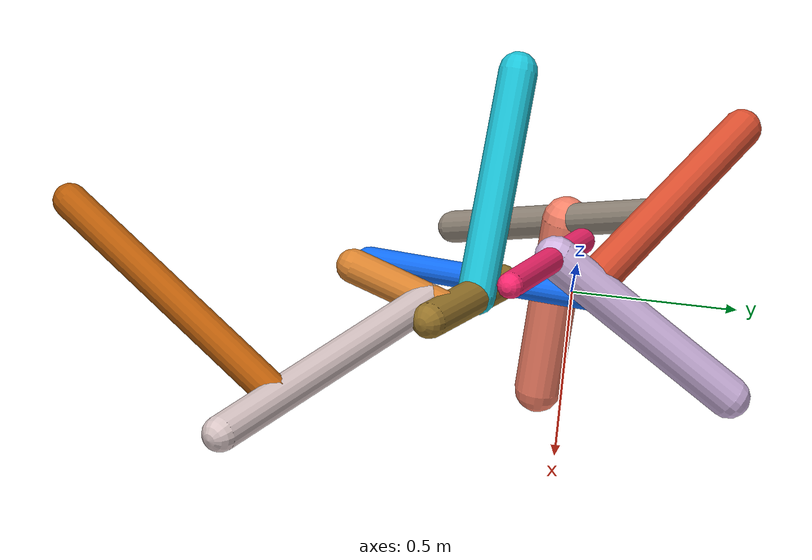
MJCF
<mujoco model="morphology">
  <option timestep="0.01"/>
  <default>
    <default class="/"/>
    <default class="0/"/>
    <default class="0/1/"/>
    <default class="0/1/2/"/>
    <default class="0/1/2/3/"/>
    <default class="0/1/2/3/4/"/>
    <default class="0/1/2/3/4/5/"/>
    <default class="0/1/2/3/4/5/6/"/>
    <default class="0/1/2/3/7/"/>
    <default class="0/1/8/"/>
    <default class="0/1/8/9/"/>
    <default class="0/1/8/9/10/"/>
  </default>
  <asset>
    <texture name="texplane" type="2d" builtin="checker" rgb1="0.10000000000000001 0.20000000000000001 0.29999999999999999" rgb2="0.20000000000000001 0.29999999999999999 0.40000000000000002" width="300" height="300"/>
    <material name="MatPlane" class="/" texture="texplane" texrepeat="20 20" specular="1" shininess="1" reflectance="0.5"/>
  </asset>
  <worldbody>
    <light name="//unnamed_light_0" class="/" directional="true" pos="0 0 1.5" dir="0 0 -1.3" cutoff="100" exponent="1" diffuse="1 1 1" specular="0.10000000000000001 0.10000000000000001 0.10000000000000001"/>
    <geom name="ground" class="/" type="plane" size="15 15 0.5" material="MatPlane" rgba="1 1 1 1"/>
    <site name="body" class="/" size="9.9999999999999995e-07 9.9999999999999995e-07 9.9999999999999995e-07" pos="0 0 0.89413598775863645"/>
    <body pos="0 0 0.89413598775863645" name="0/">
      <freejoint name="0/"/>
      <geom name="0/geom" class="0/" type="capsule" contype="1" conaffinity="1" condim="3" size="0.037298405831828474" rgba="0.99846503491456495 0.1527190962236683 0.43986388479373673 1" friction="0.59999999999999998 0.10000000000000001 0.10000000000000001" fromto="0 0 0 0.24437146826491152 -0.18853383184953709 0.57566236873524601"/>
      <site name="0/end0" class="0/" size="0.0050000000000000001" pos="0.24437146826491152 -0.18853383184953709 0.57566236873524601"/>
      <site name="0/attach1" class="0/" size="9.9999999999999995e-07 9.9999999999999995e-07 9.9999999999999995e-07" pos="0.091434960266010792 -0.070542537336124908 0.21539202667835608"/>
      <body pos="0.091434960266010792 -0.070542537336124908 0.21539202667835608" name="0/1/">
        <joint name="0/1/joint/" class="0/" type="hinge" axis="0 0 1" limited="true" range="-34.826280160724536 34.826280160724536"/>
        <geom name="0/1/geom" class="0/1/" type="capsule" contype="1" conaffinity="1" condim="3" size="0.061235313085392193" rgba="0.81612383256531562 0.70982854760424252 0.88377830186093076 1" friction="0.59999999999999998 0.10000000000000001 0.10000000000000001" fromto="0 0 0 0.30022434626485039 0.53289962308044569 -0.25982365886033471"/>
        <site name="0/1/end1" class="0/1/" size="0.0050000000000000001" pos="0.30022434626485039 0.53289962308044569 -0.25982365886033471"/>
        <site name="0/1/attach2" class="0/1/" size="9.9999999999999995e-07 9.9999999999999995e-07 9.9999999999999995e-07" pos="0.09229781425921578 0.16382905331233491 -0.079877451992136042"/>
        <body pos="0.09229781425921578 0.16382905331233491 -0.079877451992136042" name="0/1/2/">
          <joint name="0/1/2/joint/" class="0/1/" type="hinge" axis="5.5511151231257827e-17 0.4382500720042789 0.89885308832325017" limited="true" range="-42.157900343513276 42.157900343513276"/>
          <geom name="0/1/2/geom" class="0/1/2/" type="capsule" contype="1" conaffinity="1" condim="3" size="0.037390917721228496" rgba="0.070642210479517575 0.43889722840943013 0.98090982872539734 1" friction="0.59999999999999998 0.10000000000000001 0.10000000000000001" fromto="0 0 0 -0.11229370248529924 -0.69473430818454374 -0.41955538054209329"/>
          <site name="0/1/2/end2" class="0/1/2/" size="0.0050000000000000001" pos="-0.11229370248529924 -0.69473430818454374 -0.41955538054209329"/>
          <site name="0/1/2/attach3" class="0/1/2/" size="9.9999999999999995e-07 9.9999999999999995e-07 9.9999999999999995e-07" pos="-0.049776023487617782 -0.30795236488328342 -0.18597479657377602"/>
          <body pos="-0.049776023487617782 -0.30795236488328342 -0.18597479657377602" name="0/1/2/3/">
            <joint name="0/1/2/3/joint/" class="0/1/2/" type="hinge" axis="0.99056323533104651 -0.11732221216592331 -0.070851784331685791" limited="true" range="-45.894612034747837 45.894612034747837"/>
            <geom name="0/1/2/3/geom" class="0/1/2/3/" type="capsule" contype="1" conaffinity="1" condim="3" size="0.051503652304916665" rgba="0.58967547949008792 0.45398544588784351 0.1638482931151729 1" friction="0.59999999999999998 0.10000000000000001 0.10000000000000001" fromto="0 0 0 0.18009315639625489 -0.18636818264998656 0.30278706251527021"/>
            <site name="0/1/2/3/end3" class="0/1/2/3/" size="0.0050000000000000001" pos="0.18009315639625489 -0.18636818264998656 0.30278706251527021"/>
            <site name="0/1/2/3/attach4" class="0/1/2/3/" size="9.9999999999999995e-07 9.9999999999999995e-07 9.9999999999999995e-07" pos="0.13217194081919015 -0.13677723740704167 0.22221807040535024"/>
            <body pos="0.13217194081919015 -0.13677723740704167 0.22221807040535024" name="0/1/2/3/4/">
              <joint name="0/1/2/3/4/joint/" class="0/1/2/3/" type="hinge" axis="5.5511151231257827e-17 0.85161100653036392 0.5241742969245442" limited="true" range="-38.321078203624396 38.321078203624396"/>
              <geom name="0/1/2/3/4/geom" class="0/1/2/3/4/" type="capsule" contype="1" conaffinity="1" condim="3" size="0.049342204254496064" rgba="0.85799986989574484 0.51728218255363789 0.18602038559001721 1" friction="0.59999999999999998 0.10000000000000001 0.10000000000000001" fromto="0 0 0 -0.099282468398348867 -0.27958000025874358 -0.026838947698534343"/>
              <site name="0/1/2/3/4/end4" class="0/1/2/3/4/" size="0.0050000000000000001" pos="-0.099282468398348867 -0.27958000025874358 -0.026838947698534343"/>
              <site name="0/1/2/3/4/attach5" class="0/1/2/3/4/" size="9.9999999999999995e-07 9.9999999999999995e-07 9.9999999999999995e-07" pos="-0.022591626101384828 -0.063618148633537097 -0.00610717562870339"/>
              <body pos="-0.022591626101384828 -0.063618148633537097 -0.00610717562870339" name="0/1/2/3/4/5/">
                <joint name="0/1/2/3/4/5/joint/" class="0/1/2/3/4/" type="hinge" axis="-6.9388939039072284e-18 -0.09555808276917431 0.99542385586115012" limited="true" range="-40.282945842175629 40.282945842175629"/>
                <geom name="0/1/2/3/4/5/geom" class="0/1/2/3/4/5/" type="capsule" contype="1" conaffinity="1" condim="3" size="0.050083819922118675" rgba="0.84762992058907372 0.77281355427281129 0.77209723980684641 1" friction="0.59999999999999998 0.10000000000000001 0.10000000000000001" fromto="0 0 0 0.51449465099980096 -0.49893043884941435 0.5882457931412044"/>
                <site name="0/1/2/3/4/5/end5" class="0/1/2/3/4/5/" size="0.0050000000000000001" pos="0.51449465099980096 -0.49893043884941435 0.5882457931412044"/>
                <site name="0/1/2/3/4/5/attach6" class="0/1/2/3/4/5/" size="9.9999999999999995e-07 9.9999999999999995e-07 9.9999999999999995e-07" pos="0.37646940782850352 -0.3650806602094821 0.43043507832613653"/>
                <body pos="0.37646940782850352 -0.3650806602094821 0.43043507832613653" name="0/1/2/3/4/5/6/">
                  <joint name="0/1/2/3/4/5/6/joint/" class="0/1/2/3/4/5/" type="hinge" axis="0.83191672103000081 0.35892980362825372 -0.42318313451515877" limited="true" range="-68.963628249710879 68.963628249710879"/>
                  <geom name="0/1/2/3/4/5/6/geom" class="0/1/2/3/4/5/6/" type="capsule" contype="1" conaffinity="1" condim="3" size="0.049656722330943155" rgba="0.72662913730128353 0.36427987639406234 0.035200824892154259 1" friction="0.59999999999999998 0.10000000000000001 0.10000000000000001" fromto="0 0 0 -0.50965897863573906 -0.64228041680252712 -0.22226577778107504"/>
                  <site name="0/1/2/3/4/5/6/end6" class="0/1/2/3/4/5/6/" size="0.0050000000000000001" pos="-0.50965897863573906 -0.64228041680252712 -0.22226577778107504"/>
                </body>
              </body>
            </body>
            <site name="0/1/2/3/attach7" class="0/1/2/3/" size="9.9999999999999995e-07 9.9999999999999995e-07 9.9999999999999995e-07" pos="0.062951447094272348 -0.065144878489065611 0.10583902313767513"/>
            <body pos="0.062951447094272348 -0.065144878489065611 0.10583902313767513" name="0/1/2/3/7/">
              <joint name="0/1/2/3/7/joint/" class="0/1/2/3/" type="hinge" axis="5.5511151231257827e-17 0.85161100653036392 0.5241742969245442" limited="true" range="-45.204810792166818 45.204810792166818"/>
              <geom name="0/1/2/3/7/geom" class="0/1/2/3/7/" type="capsule" contype="1" conaffinity="1" condim="3" size="0.056181875637303882" rgba="0.11290714218403042 0.77686787578716765 0.8587214787438876 1" friction="0.59999999999999998 0.10000000000000001 0.10000000000000001" fromto="0 0 0 -0.64464002985094926 0.047613756102913962 0.052340482184556558"/>
              <site name="0/1/2/3/7/end7" class="0/1/2/3/7/" size="0.0050000000000000001" pos="-0.64464002985094926 0.047613756102913962 0.052340482184556558"/>
            </body>
          </body>
        </body>
        <site name="0/1/attach8" class="0/1/" size="9.9999999999999995e-07 9.9999999999999995e-07 9.9999999999999995e-07" pos="0.059678119327191421 0.10592894177727628 -0.051647334769498385"/>
        <body pos="0.059678119327191421 0.10592894177727628 -0.051647334769498385" name="0/1/8/">
          <joint name="0/1/8/joint/" class="0/1/" type="hinge" axis="5.5511151231257827e-17 0.4382500720042789 0.89885308832325017" limited="true" range="-57.227212757802199 57.227212757802199"/>
          <geom name="0/1/8/geom" class="0/1/8/" type="capsule" contype="1" conaffinity="1" condim="3" size="0.05851562639357473" rgba="0.8940433880448212 0.32612390952825354 0.1976644585671723 1" friction="0.59999999999999998 0.10000000000000001 0.10000000000000001" fromto="0 0 0 -0.61805078183932993 0.40390142207046953 -0.61566890922145445"/>
          <site name="0/1/8/end8" class="0/1/8/" size="0.0050000000000000001" pos="-0.61805078183932993 0.40390142207046953 -0.61566890922145445"/>
          <site name="0/1/8/attach9" class="0/1/8/" size="9.9999999999999995e-07 9.9999999999999995e-07 9.9999999999999995e-07" pos="-0.27218952780029054 0.17787816241256152 -0.27114055124012743"/>
          <body pos="-0.27218952780029054 0.17787816241256152 -0.27114055124012743" name="0/1/8/9/">
            <joint name="0/1/8/9/joint/" class="0/1/8/" type="hinge" axis="5.5511151231257827e-17 0.83612969555583483 0.54853179689942022" limited="true" range="-60.034867128162979 60.034867128162979"/>
            <geom name="0/1/8/9/geom" class="0/1/8/9/" type="capsule" contype="1" conaffinity="1" condim="3" size="0.047910711483480084" rgba="0.59823809923935767 0.55261993373989549 0.49730170798444462 1" friction="0.59999999999999998 0.10000000000000001 0.10000000000000001" fromto="0 0 0 -0.020433622956757436 -0.5882192310711849 -0.68674010774088812"/>
            <site name="0/1/8/9/end9" class="0/1/8/9/" size="0.0050000000000000001" pos="-0.020433622956757436 -0.5882192310711849 -0.68674010774088812"/>
            <site name="0/1/8/9/attach10" class="0/1/8/9/" size="9.9999999999999995e-07 9.9999999999999995e-07 9.9999999999999995e-07" pos="-0.0090254483835487884 -0.25981404861383434 -0.3033303202493704"/>
            <body pos="-0.0090254483835487884 -0.25981404861383434 -0.3033303202493704" name="0/1/8/9/10/">
              <joint name="0/1/8/9/10/joint/" class="0/1/8/9/" type="hinge" axis="0.99974476147656921 -0.014696891831038061 -0.017158475184708644" limited="true" range="-53.666193650828205 53.666193650828205"/>
              <geom name="0/1/8/9/10/geom" class="0/1/8/9/10/" type="capsule" contype="1" conaffinity="1" condim="3" size="0.06979927906217645" rgba="0.96505154093326939 0.50712606745243027 0.40623793028214228 1" friction="0.59999999999999998 0.10000000000000001 0.10000000000000001" fromto="0 0 0 0.46070052545366691 -0.025483474149167074 -0.30210048766684811"/>
              <site name="0/1/8/9/10/end10" class="0/1/8/9/10/" size="0.0050000000000000001" pos="0.46070052545366691 -0.025483474149167074 -0.30210048766684811"/>
            </body>
          </body>
        </body>
      </body>
      <camera name="0/iso" class="0/" mode="trackcom" pos="-2.2999999999999998 -2.2999999999999998 1" xyaxes="0.45000000000000001 -0.45000000000000001 0 0.29999999999999999 0.14999999999999999 0.93999999999999995"/>
    </body>
  </worldbody>
  <actuator>
    <motor name="0/1/motor" class="0/1/" ctrllimited="true" ctrlrange="-1 1" gear="91" joint="0/1/joint/"/>
    <motor name="0/1/2/motor" class="0/1/2/" ctrllimited="true" ctrlrange="-1 1" gear="90" joint="0/1/2/joint/"/>
    <motor name="0/1/2/3/motor" class="0/1/2/3/" ctrllimited="true" ctrlrange="-1 1" gear="78" joint="0/1/2/3/joint/"/>
    <motor name="0/1/2/3/4/motor" class="0/1/2/3/4/" ctrllimited="true" ctrlrange="-1 1" gear="57" joint="0/1/2/3/4/joint/"/>
    <motor name="0/1/2/3/4/5/motor" class="0/1/2/3/4/5/" ctrllimited="true" ctrlrange="-1 1" gear="99" joint="0/1/2/3/4/5/joint/"/>
    <motor name="0/1/2/3/4/5/6/motor" class="0/1/2/3/4/5/6/" ctrllimited="true" ctrlrange="-1 1" gear="56" joint="0/1/2/3/4/5/6/joint/"/>
    <motor name="0/1/2/3/7/motor" class="0/1/2/3/7/" ctrllimited="true" ctrlrange="-1 1" gear="59" joint="0/1/2/3/7/joint/"/>
    <motor name="0/1/8/motor" class="0/1/8/" ctrllimited="true" ctrlrange="-1 1" gear="99" joint="0/1/8/joint/"/>
    <motor name="0/1/8/9/motor" class="0/1/8/9/" ctrllimited="true" ctrlrange="-1 1" gear="66" joint="0/1/8/9/joint/"/>
    <motor name="0/1/8/9/10/motor" class="0/1/8/9/10/" ctrllimited="true" ctrlrange="-1 1" gear="56" joint="0/1/8/9/10/joint/"/>
  </actuator>
  <sensor>
    <subtreelinvel name="velocity" body="0/"/>
  </sensor>
</mujoco>
